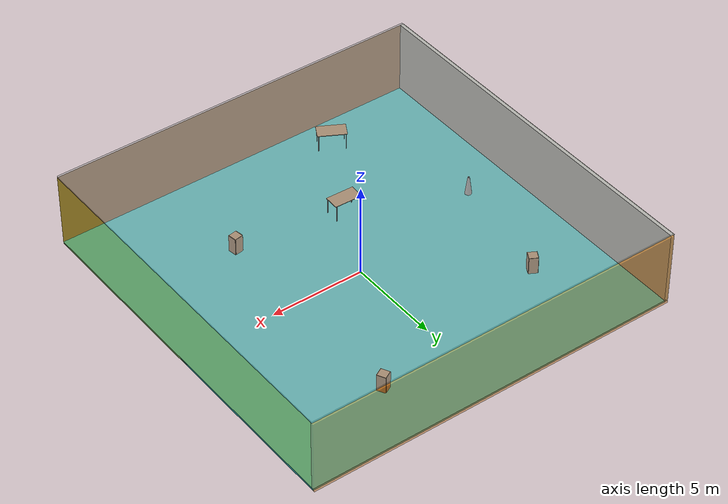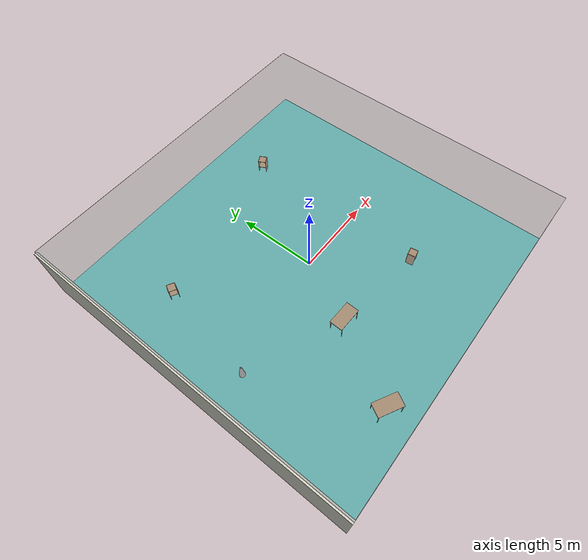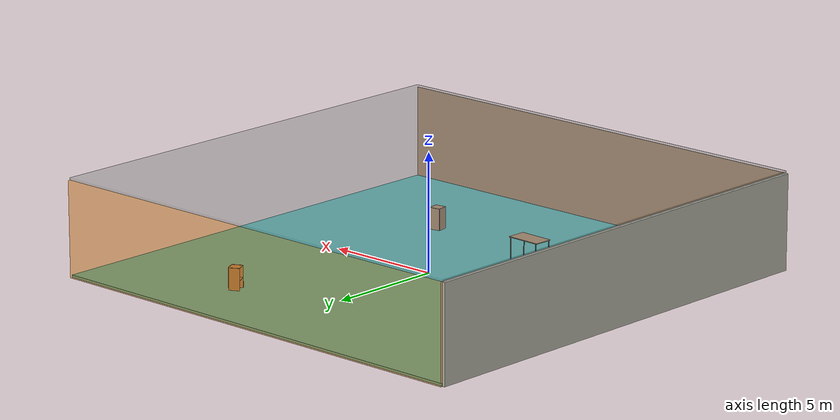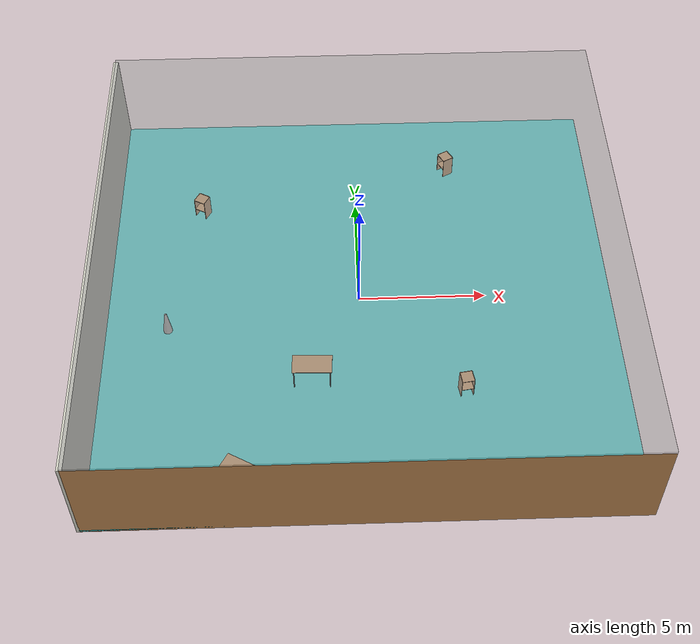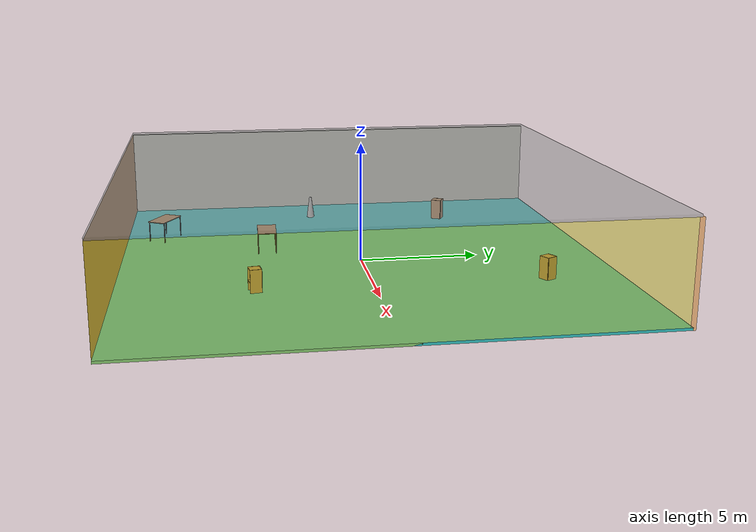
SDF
<sdf version="1.4">
 <world name="default">
  <physics type="ode">
   <max_step_size>0.001</max_step_size>
   <real_time_factor>1</real_time_factor>
   <real_time_update_rate>1000</real_time_update_rate>
   <gravity>0 0 -9.8</gravity>
  </physics>
  <scene><ambient>0.4 0.4 0.4 1</ambient><background>0.7 0.7 0.7 1</background><shadows>1</shadows></scene>
  <model name="Surrounding">
   <static>1</static>
   <link name="Ceiling">
    <collision name="Ceiling_Collision"><geometry><box><size>20 20 0.1</size></box></geometry></collision>
    <visual name="Ceiling_Visual">
     <geometry><box><size>20 20 0.1</size></box></geometry>
     <material>
      <script><uri>file://media/materials/scripts/gazebo.material</uri><name>Gazebo/GreyTransparent</name></script>
     </material>
    </visual>
    <pose>0 0 4.05 0 0 0</pose>
   </link>
   <link name="Wall_South">
    <collision name="Wall_South_Collision">
     <geometry><box><size>20 0 4</size></box></geometry>
     <pose>0 0 2 0 -0 0</pose>
    </collision>
    <visual name="Wall_South_Visual">
     <pose>0 0 2 0 -0 0</pose>
     <geometry><box><size>20 0 4</size></box></geometry>
     <material>
      <script><uri>file://media/materials/scripts/gazebo.material</uri><name>Gazebo/WoodFloor</name></script>
     </material>
    </visual>
    <velocity_decay><linear>0</linear><angular>0</angular></velocity_decay>
    <pose>0 -10 0 0 -0 0</pose>
   </link>
   <link name="Wall_East">
    <collision name="Wall_21_Collision">
     <geometry><box><size>20 0 4</size></box></geometry>
     <pose>0 0 2 0 -0 0</pose>
    </collision>
    <visual name="Wall_21_Visual">
     <pose>0 0 2 0 -0 0</pose>
     <geometry><box><size>20 0 4</size></box></geometry>
     <material>
      <script>
       <uri>file://media/materials/scripts/gazebo.material</uri>
       <name>Gazebo/YellowTransparent</name>
      </script>
     </material>
    </visual>
    <velocity_decay><linear>0</linear><angular>0</angular></velocity_decay>
    <pose>10 0 0 0 -0 1.5708</pose>
   </link>
   <link name="Wall_North">
    <collision name="Wall_22_Collision">
     <geometry><box><size>20 0.2 4</size></box></geometry>
     <pose>0 0 2 0 -0 0</pose>
    </collision>
    <visual name="Wall_22_Visual">
     <pose>0 0 2 0 -0 0</pose>
     <geometry><box><size>20 0.2 4</size></box></geometry>
     <material>
      <script>
       <uri>file://media/materials/scripts/gazebo.material</uri>
       <name>Gazebo/OrangeTransparent</name>
      </script>
     </material>
    </visual>
    <velocity_decay><linear>0</linear><angular>0</angular></velocity_decay>
    <pose>0 10 0 0 -0 0</pose>
   </link>
   <link name="Wall_West">
    <collision name="Wall_23_Collision">
     <geometry><box><size>20 0.2 4</size></box></geometry>
     <pose>0 0 2 0 -0 0</pose>
    </collision>
    <visual name="Wall_23_Visual">
     <pose>0 0 2 0 -0 0</pose>
     <geometry><box><size>20 0.2 4</size></box></geometry>
     <material>
      <script><uri>file://media/materials/scripts/gazebo.material</uri><name>Gazebo/PaintedWall</name></script>
     </material>
    </visual>
    <velocity_decay><linear>0</linear><angular>0</angular></velocity_decay>
    <pose>-10 0 0 0 0 -1.5708</pose>
   </link>
   <link name="Ground_link">
    <collision name="collision">
     <pose>0 0 .05 0 -0 0</pose>
     <geometry><box><size>20 20 0.1</size></box></geometry>
    </collision>
    <visual name="visual">
     <pose>0 0 .05 0 -0 0</pose>
     <geometry><box><size>20 20 0.1</size></box></geometry>
     <material>
      <script>
       <uri>file://media/materials/scripts/gazebo.material</uri>
       <name>Gazebo/TurquoiseGlowOutline</name>
      </script>
     </material>
    </visual>
   </link>
   <static>1</static>
  </model>
  <spherical_coordinates>
   <surface_model>EARTH_WGS84</surface_model>
   <latitude_deg>0</latitude_deg>
   <longitude_deg>0</longitude_deg>
   <elevation>0</elevation>
   <heading_deg>0</heading_deg>
  </spherical_coordinates>
  <light name="lightball_0" type="diffuse">
   <diffuse>0.8 0.8 0.8 1</diffuse>
   <specular>0.2 0.2 0.2 1</specular>
   <attenuation>
    <range>100</range>
    <constant>0.7</constant>
    <linear>0.01</linear>
    <quadratic>0.001</quadratic>
   </attenuation>
   <direction>-0.5 0.1 -0.9</direction>
   <pose>1.65060925798 8.28401122962 0.621024198157 0 0 0</pose>
  </light>
  <light name="lightball_1" type="diffuse">
   <diffuse>0.8 0.8 0.8 1</diffuse>
   <specular>0.2 0.2 0.2 1</specular>
   <attenuation>
    <range>100</range>
    <constant>0.7</constant>
    <linear>0.01</linear>
    <quadratic>0.001</quadratic>
   </attenuation>
   <direction>-0.5 0.1 -0.9</direction>
   <pose>-8.32704388102 7.56943949291 3.00863474045 0 0 0</pose>
  </light>
  <light name="lightball_2" type="diffuse">
   <diffuse>0.8 0.8 0.8 1</diffuse>
   <specular>0.2 0.2 0.2 1</specular>
   <attenuation>
    <range>100</range>
    <constant>0.7</constant>
    <linear>0.01</linear>
    <quadratic>0.001</quadratic>
   </attenuation>
   <direction>-0.5 0.1 -0.9</direction>
   <pose>8.21896581146 0.684046357817 2.3340580997 0 0 0</pose>
  </light>
  <light name="lightball_3" type="diffuse">
   <diffuse>0.8 0.8 0.8 1</diffuse>
   <specular>0.2 0.2 0.2 1</specular>
   <attenuation>
    <range>100</range>
    <constant>0.7</constant>
    <linear>0.01</linear>
    <quadratic>0.001</quadratic>
   </attenuation>
   <direction>-0.5 0.1 -0.9</direction>
   <pose>-0.197206516492 4.45399542311 1.72038575937 0 0 0</pose>
  </light>
  <light name="lightball_4" type="diffuse">
   <diffuse>0.8 0.8 0.8 1</diffuse>
   <specular>0.2 0.2 0.2 1</specular>
   <attenuation>
    <range>100</range>
    <constant>0.7</constant>
    <linear>0.01</linear>
    <quadratic>0.001</quadratic>
   </attenuation>
   <direction>-0.5 0.1 -0.9</direction>
   <pose>5.87922371119 -2.27396523886 1.19395146953 0 0 0</pose>
  </light>
  <include>
   <uri>model://construction_cone</uri>
   <pose>-7.49223721033 -1.41861235787 0 0 0 1.53655565904</pose>
  </include>
  <include><uri>model://cabinet</uri><pose>-6.39043779151 4.73170607711 0 0 0 1.07283264641</pose></include>
  <include><uri>model://table</uri><pose>-4.42533347377 -8.34530361126 0 0 0 2.63474954689</pose></include>
  <include><uri>model://table</uri><pose>-1.89255164983 -3.87232533519 0 0 0 3.11007471755</pose></include>
  <include><uri>model://cabinet</uri><pose>3.83645930136 -4.64175512802 0 0 0 1.72535924037</pose></include>
  <include><uri>model://cabinet</uri><pose>3.91097088145 6.89582363903 0 0 0 0.488510855067</pose></include>
 </world>
</sdf>

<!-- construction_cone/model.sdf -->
<sdf version="1.5">
  <model name="Construction Cone">
    <link name="link">
      <collision name="collision">
        <geometry>
          <mesh>
            <scale>10 10 10</scale>
            <uri>file://isr-testbed/construction_cone/meshes/construction_cone.dae</uri>
          </mesh>
        </geometry>
      </collision>
      <visual name="visual">
        <geometry>
          <mesh>
            <scale>10 10 10</scale>
            <uri>file://isr-testbed/construction_cone/meshes/construction_cone.dae</uri>
          </mesh>
        </geometry>
      </visual>
    </link>
  </model>
</sdf>

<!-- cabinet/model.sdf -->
<sdf version="1.5">
  <model name="cabinet">
    <static>true</static>
    <link name="cabinet_bottom_plate">
      <inertial>
        <pose>0 0 -1 0 0 0</pose>
        <inertia>
          <ixx>2.050000</ixx>
          <ixy>0</ixy>
          <ixz>0</ixz>
          <iyy>2.050000</iyy>
          <iyz>0</iyz>
          <izz>2.050000</izz>
        </inertia>
        <mass>25.000000</mass>
      </inertial>
      <collision name="cabinet_bottom_plate_geom">
        <pose>0 0 0.010000 0 0 0</pose>
        <geometry>
          <box>
            <size>0.450000 0.450000 0.020000</size>
          </box>
        </geometry>
      </collision>
      <visual name="cabinet_bottom_plate_geom_visual">
        <pose>0 0 0.010000 0 0 0</pose>
        <geometry>
          <box>
            <size>0.450000 0.450000 0.020000</size>
          </box>
        </geometry>
        <material>
          <script>
            <uri>model://media/materials/scripts/gazebo.material</uri>
            <name>Gazebo/Wood</name>
          </script>
        </material>
      </visual>
      <collision name="cabinet_bottom_plate_geom_cabinet_back_plate">
        <pose>0.235000 0 0.510000 0 0 0</pose>
        <geometry>
          <box>
            <size>0.020000 0.450000 1.020000</size>
          </box>
        </geometry>
      </collision>
      <visual name="cabinet_bottom_plate_geom_cabinet_back_plate_visual">
        <pose>0.235000 0 0.510000 0 0 0</pose>
        <geometry>
          <box>
            <size>0.020000 0.450000 1.020000</size>
          </box>
        </geometry>
        <material>
          <script>
            <uri>model://media/materials/scripts/gazebo.material</uri>
            <name>Gazebo/Wood</name>
          </script>
        </material>
      </visual>
      <collision name="cabinet_bottom_plate_geom_cabinet_left_plate">
        <pose>0 0.235000 0.510000 0 0 0</pose>
        <geometry>
          <box>
            <size>0.450000 0.020000 1.020000</size>
          </box>
        </geometry>
      </collision>
      <visual name="cabinet_bottom_plate_geom_cabinet_left_plate_visual">
        <pose>0 0.235000 0.510000 0 0 0</pose>
        <geometry>
          <box>
            <size>0.450000 0.020000 1.020000</size>
          </box>
        </geometry>
        <material>
          <script>
            <uri>model://media/materials/scripts/gazebo.material</uri>
            <name>Gazebo/Wood</name>
          </script>
        </material>
      </visual>
      <collision name="cabinet_bottom_plate_geom_cabinet_middle_plate">
        <pose>0 0 0.510000 0 0 0</pose>
        <geometry>
          <box>
            <size>0.450000 0.450000 0.020000</size>
          </box>
        </geometry>
      </collision>
      <visual name="cabinet_bottom_plate_geom_cabinet_middle_plate_visual">
        <pose>0 0 0.510000 0 0 0</pose>
        <geometry>
          <box>
            <size>0.450000 0.450000 0.020000</size>
          </box>
        </geometry>
        <material>
          <script>
            <uri>model://media/materials/scripts/gazebo.material</uri>
            <name>Gazebo/Wood</name>
          </script>
        </material>
      </visual>
      <collision name="cabinet_bottom_plate_geom_cabinet_right_plate">
        <pose>0 -0.235000 0.510000 0 0 0</pose>
        <geometry>
          <box>
            <size>0.450000 0.020000 1.020000</size>
          </box>
        </geometry>
      </collision>
      <visual name="cabinet_bottom_plate_geom_cabinet_right_plate_visual">
        <pose>0 -0.235000 0.510000 0 0 0</pose>
        <geometry>
          <box>
            <size>0.450000 0.020000 1.020000</size>
          </box>
        </geometry>
        <material>
          <script>
            <uri>model://media/materials/scripts/gazebo.material</uri>
            <name>Gazebo/Wood</name>
          </script>
        </material>
      </visual>
      <collision name="cabinet_bottom_plate_geom_cabinet_top_plate">
        <pose>0 0 1.010000 0 0 0</pose>
        <geometry>
          <box>
            <size>0.450000 0.450000 0.020000</size>
          </box>
        </geometry>
      </collision>
      <visual name="cabinet_bottom_plate_geom_cabinet_top_plate_visual">
        <pose>0 0 1.010000 0 0 0</pose>
        <geometry>
          <box>
            <size>0.450000 0.450000 0.020000</size>
          </box>
        </geometry>
        <material>
          <script>
            <uri>model://media/materials/scripts/gazebo.material</uri>
            <name>Gazebo/Wood</name>
          </script>
        </material>
      </visual>
    </link>
  </model>
</sdf>

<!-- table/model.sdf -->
<sdf version="1.5">
  <model name="table">
    <static>true</static>
    <link name="link">
      <collision name="surface">
        <pose>0 0 1.0 0 0 0</pose>
        <geometry>
          <box>
            <size>1.5 0.8 0.03</size>
          </box>
        </geometry>
        <surface>
          <friction>
            <ode>
              <mu>0.6</mu>
              <mu2>0.6</mu2>
            </ode>
          </friction>
        </surface>
      </collision>
      <visual name="visual1">
        <pose>0 0 1.0 0 0 0</pose>
        <geometry>
          <box>
            <size>1.5 0.8 0.03</size>
          </box>
        </geometry>
        <material>
          <script>
            <uri>model://media/materials/scripts/gazebo.material</uri>
            <name>Gazebo/Wood</name>
          </script>
        </material>
      </visual>
      <collision name="front_left_leg">
        <pose>0.68 0.38 0.5 0 0 0</pose>
        <geometry>
          <cylinder>
            <radius>0.02</radius>
            <length>1.0</length>
          </cylinder>
        </geometry>
      </collision>
      <visual name="front_left_leg">
        <pose>0.68 0.38 0.5 0 0 0</pose>
        <geometry>
          <cylinder>
            <radius>0.02</radius>
            <length>1.0</length>
          </cylinder>
        </geometry>
        <material>
          <script>
            <uri>model://media/materials/scripts/gazebo.material</uri>
            <name>Gazebo/Grey</name>
          </script>
        </material>
      </visual>
      <collision name="front_right_leg">
        <pose>0.68 -0.38 0.5 0 0 0</pose>
        <geometry>
          <cylinder>
            <radius>0.02</radius>
            <length>1.0</length>
          </cylinder>
        </geometry>
      </collision>
      <visual name="front_right_leg">
        <pose>0.68 -0.38 0.5 0 0 0</pose>
        <geometry>
          <cylinder>
            <radius>0.02</radius>
            <length>1.0</length>
          </cylinder>
        </geometry>
        <material>
          <script>
            <uri>model://media/materials/scripts/gazebo.material</uri>
            <name>Gazebo/Grey</name>
          </script>
        </material>
      </visual>
      <collision name="back_right_leg">
        <pose>-0.68 -0.38 0.5 0 0 0</pose>
        <geometry>
          <cylinder>
            <radius>0.02</radius>
            <length>1.0</length>
          </cylinder>
        </geometry>
      </collision>
      <visual name="back_right_leg">
        <pose>-0.68 -0.38 0.5 0 0 0</pose>
        <geometry>
          <cylinder>
            <radius>0.02</radius>
            <length>1.0</length>
          </cylinder>
        </geometry>
        <material>
          <script>
            <uri>model://media/materials/scripts/gazebo.material</uri>
            <name>Gazebo/Grey</name>
          </script>
        </material>
      </visual>
      <collision name="back_left_leg">
        <pose>-0.68 0.38 0.5 0 0 0</pose>
        <geometry>
          <cylinder>
            <radius>0.02</radius>
            <length>1.0</length>
          </cylinder>
        </geometry>
      </collision>
      <visual name="back_left_leg">
        <pose>-0.68 0.38 0.5 0 0 0</pose>
        <geometry>
          <cylinder>
            <radius>0.02</radius>
            <length>1.0</length>
          </cylinder>
        </geometry>
        <material>
          <script>
            <uri>model://media/materials/scripts/gazebo.material</uri>
            <name>Gazebo/Grey</name>
          </script>
        </material>
      </visual>
    </link>
  </model>
</sdf>
